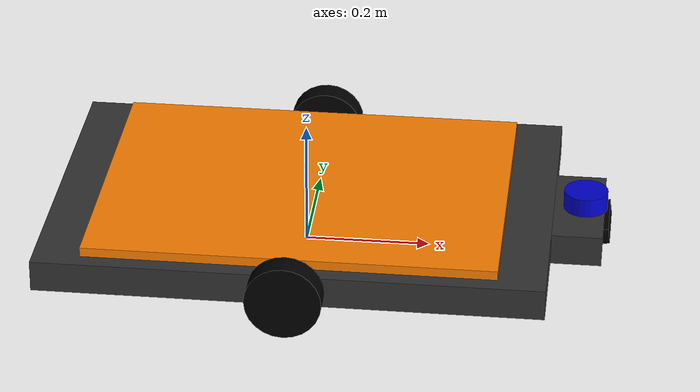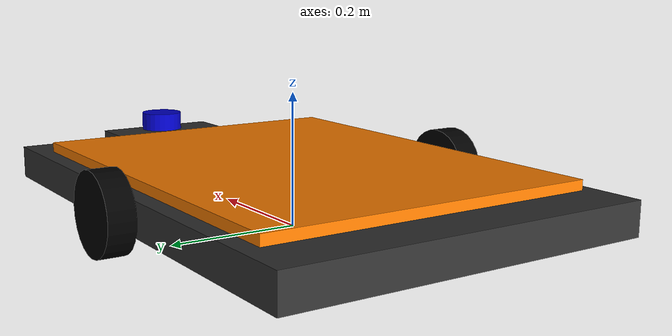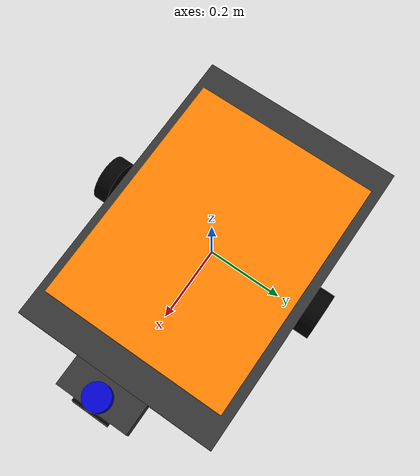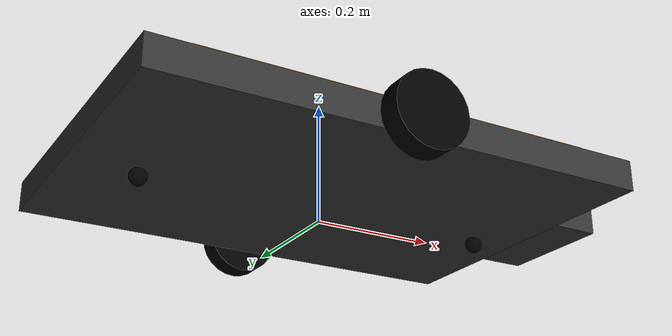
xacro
<?xml version="1.0"?>
<robot xmlns:xacro="http://www.ros.org/wiki/xacro" name="warehouse_amr">

    <xacro:property name="chassis_length" value="0.80"/>
    <xacro:property name="chassis_width" value="0.55"/>
    <xacro:property name="chassis_height" value="0.05"/>
    <xacro:property name="wheel_radius" value="0.06"/>
    <xacro:property name="wheel_width" value="0.04"/>
    <xacro:property name="wheel_ygap" value="0.02"/>

    <xacro:property name="caster_wheel_radius" value="0.015"/>
    <xacro:property name="caster_wheel_width" value="0.02"/>
    <xacro:property name="caster_trail" value="0.01"/>

    <xacro:property name="lift_length" value="0.65"/>
    <xacro:property name="lift_width" value="0.50"/>
    <xacro:property name="lift_height" value="0.015"/>
    <xacro:property name="pillar_radius" value="0.015"/>

    <material name="dark_grey"><color rgba="0.2 0.2 0.2 1.0"/></material>
    <material name="steel"><color rgba="0.7 0.7 0.7 1.0"/></material>
    <material name="safety_orange"><color rgba="1.0 0.5 0.0 1.0"/></material>
    <material name="black"><color rgba="0.0 0.0 0.0 1.0"/></material>
    <material name="blue"><color rgba="0.0 0.0 0.8 1.0"/></material>

    <xacro:macro name="inertial_box" params="mass l w h *origin">
        <inertial>
            <xacro:insert_block name="origin"/>
            <mass value="${mass}"/>
            <inertia ixx="${(1/12) * mass * (w*w + h*h)}" ixy="0.0" ixz="0.0"
                     iyy="${(1/12) * mass * (l*l + h*h)}" iyz="0.0"
                     izz="${(1/12) * mass * (l*l + w*w)}"/>
        </inertial>
    </xacro:macro>

    <xacro:macro name="inertial_cylinder" params="mass r h *origin">
        <inertial>
            <xacro:insert_block name="origin"/>
            <mass value="${mass}"/>
            <inertia ixx="${(1/12) * mass * (3*r*r + h*h)}" ixy="0.0" ixz="0.0"
                     iyy="${(1/12) * mass * (3*r*r + h*h)}" iyz="0.0"
                     izz="${(1/2) * mass * (r*r)}"/>
        </inertial>
    </xacro:macro>

    <xacro:macro name="inertial_sphere" params="mass r *origin">
        <inertial>
            <xacro:insert_block name="origin"/>
            <mass value="${mass}"/>
            <inertia ixx="${(2/5) * mass * (r*r)}" ixy="0.0" ixz="0.0"
                     iyy="${(2/5) * mass * (r*r)}" iyz="0.0"
                     izz="${(2/5) * mass * (r*r)}"/>
        </inertial>
    </xacro:macro>

    <link name="base_footprint"/>

    <link name="base_link">
        <visual>
            <origin xyz="0 0 0" rpy="0 0 0"/>
            <geometry><box size="${chassis_length} ${chassis_width} ${chassis_height}"/></geometry>
            <material name="dark_grey"/>
        </visual>
        <collision>
            <origin xyz="0 0 0" rpy="0 0 0"/>
            <geometry><box size="${chassis_length} ${chassis_width} ${chassis_height}"/></geometry>
        </collision>
        <xacro:inertial_box mass="20.0" l="${chassis_length}" w="${chassis_width}" h="${chassis_height}">
            <origin xyz="0 0 0" rpy="0 0 0"/>
        </xacro:inertial_box>
    </link>

    <joint name="base_footprint_joint" type="fixed">
        <parent link="base_footprint"/>
        <child link="base_link"/>
        <origin xyz="0 0 ${wheel_radius}" rpy="0 0 0"/>
    </joint>

    <xacro:macro name="wheel" params="prefix y_reflect">
        <link name="${prefix}_wheel">
            <visual>
                <origin xyz="0 0 0" rpy="${pi/2} 0 0"/>
                <geometry><cylinder radius="${wheel_radius}" length="${wheel_width}"/></geometry>
                <material name="black"/>
            </visual>
            <collision>
                <origin xyz="0 0 0" rpy="${pi/2} 0 0"/>
                <geometry><cylinder radius="${wheel_radius}" length="${wheel_width}"/></geometry>
            </collision>
            <xacro:inertial_cylinder mass="1.5" r="${wheel_radius}" h="${wheel_width}">
                <origin xyz="0 0 0" rpy="${pi/2} 0 0"/>
            </xacro:inertial_cylinder>
        </link>

        <gazebo reference="${prefix}_wheel">
            <mu1>1.0</mu1>
            <mu2>1.0</mu2>
        </gazebo>

        <joint name="${prefix}_wheel_joint" type="continuous">
            <parent link="base_link"/>
            <child link="${prefix}_wheel"/>
            <origin xyz="0 ${y_reflect * (chassis_width/2 + wheel_ygap)} 0" rpy="0 0 0"/>
            <axis xyz="0 1 0"/>
            <!-- Must clear the worst-case arc demand on the outer wheel:
                 (lin_max + ang_max*wheel_sep/2)/wheel_radius
                 = (1.0 + 2.0*0.295)/0.06 ~= 27 rad/s. -->
            <limit effort="200.0" velocity="30.0"/>
            <!-- No passive damping/friction: ign_ros2_control's velocity servo
                 drives these joints, so passive joint friction causes stick-slip. -->
            <dynamics damping="0.0" friction="0.0"/>
        </joint>
    </xacro:macro>

    <xacro:wheel prefix="left" y_reflect="1"/>
    <xacro:wheel prefix="right" y_reflect="-1"/>

    <xacro:macro name="caster" params="prefix x_offset">
        <!-- Low-friction support sphere (standard sim caster for diff-drive).
             No rolling/swivel constraint, so it can't scrub or fight turns;
             the drive wheels provide all traction. -->
        <link name="${prefix}_caster">
            <visual>
                <origin xyz="0 0 0" rpy="0 0 0"/>
                <geometry><sphere radius="${caster_wheel_radius}"/></geometry>
                <material name="black"/>
            </visual>
            <collision>
                <origin xyz="0 0 0" rpy="0 0 0"/>
                <geometry><sphere radius="${caster_wheel_radius}"/></geometry>
            </collision>
            <xacro:inertial_sphere mass="0.3" r="${caster_wheel_radius}">
                <origin xyz="0 0 0" rpy="0 0 0"/>
            </xacro:inertial_sphere>
        </link>

        <gazebo reference="${prefix}_caster">
            <mu1>0.02</mu1>
            <mu2>0.02</mu2>
        </gazebo>

        <joint name="${prefix}_caster_joint" type="fixed">
            <parent link="base_link"/>
            <child link="${prefix}_caster"/>
            <origin xyz="${x_offset} 0 ${-(wheel_radius - caster_wheel_radius)}" rpy="0 0 0"/>
        </joint>
    </xacro:macro>

    <xacro:caster prefix="front" x_offset="0.30"/>
    <xacro:caster prefix="rear" x_offset="-0.30"/>

    <link name="lift_plate">
        <visual>
            <origin xyz="0 0 ${lift_height/2}" rpy="0 0 0"/>
            <geometry><box size="${lift_length} ${lift_width} ${lift_height}"/></geometry>
            <material name="safety_orange"/>
        </visual>
        <collision>
            <origin xyz="0 0 ${lift_height/2}" rpy="0 0 0"/>
            <geometry><box size="${lift_length} ${lift_width} ${lift_height}"/></geometry>
        </collision>
        <xacro:inertial_box mass="4.0" l="${lift_length}" w="${lift_width}" h="${lift_height}">
            <origin xyz="0 0 ${lift_height/2}" rpy="0 0 0"/>
        </xacro:inertial_box>
    </link>

    <joint name="lift_joint" type="prismatic">
        <parent link="base_link"/>
        <child link="lift_plate"/>
        <origin xyz="0 0 ${chassis_height/2 + 0.001}" rpy="0 0 0"/>
        <axis xyz="0 0 1"/>
        <limit lower="0.0" upper="0.04" effort="4000.0" velocity="0.04"/>
        <dynamics damping="80.0" friction="0.0"/>
    </joint>

    <xacro:macro name="lift_pillar" params="prefix x_offset y_offset">
        <link name="${prefix}_pillar">
            <visual>
                <origin xyz="0 0 -0.0225" rpy="0 0 0"/>
                <geometry><cylinder radius="${pillar_radius}" length="0.045"/></geometry>
                <material name="steel"/>
            </visual>
            <xacro:inertial_cylinder mass="0.2" r="${pillar_radius}" h="0.045">
                <origin xyz="0 0 -0.0225" rpy="0 0 0"/>
            </xacro:inertial_cylinder>
        </link>

        <joint name="${prefix}_pillar_joint" type="fixed">
            <parent link="lift_plate"/>
            <child link="${prefix}_pillar"/>
            <origin xyz="${x_offset} ${y_offset} 0" rpy="0 0 0"/>
        </joint>
    </xacro:macro>

    <xacro:lift_pillar prefix="front_left"  x_offset="0.22"  y_offset="0.18"/>
    <xacro:lift_pillar prefix="front_right" x_offset="0.22"  y_offset="-0.18"/>
    <xacro:lift_pillar prefix="rear_left"   x_offset="-0.22" y_offset="0.18"/>
    <xacro:lift_pillar prefix="rear_right"  x_offset="-0.22" y_offset="-0.18"/>

    <link name="sensor_chin">
        <visual>
            <origin xyz="0 0 0" rpy="0 0 0"/>
            <geometry><box size="0.08 0.20 ${chassis_height}"/></geometry>
            <material name="dark_grey"/>
        </visual>
        <collision>
            <geometry><box size="0.08 0.20 ${chassis_height}"/></geometry>
        </collision>
        <xacro:inertial_box mass="2.0" l="0.08" w="0.20" h="${chassis_height}">
            <origin xyz="0 0 0" rpy="0 0 0"/>
        </xacro:inertial_box>
    </link>

    <joint name="sensor_chin_joint" type="fixed">
        <parent link="base_link"/>
        <child link="sensor_chin"/>
        <origin xyz="${chassis_length/2 + 0.04} 0 0" rpy="0 0 0"/>
    </joint>

    <link name="lidar_link">
        <visual>
            <geometry><cylinder radius="0.035" length="0.03"/></geometry>
            <material name="blue"/>
        </visual>
        <xacro:inertial_cylinder mass="0.2" r="0.035" h="0.03">
            <origin xyz="0 0 0" rpy="0 0 0"/>
        </xacro:inertial_cylinder>
    </link>

    <joint name="lidar_joint" type="fixed">
        <parent link="sensor_chin"/>
        <child link="lidar_link"/>
        <origin xyz="0.01 0 ${chassis_height/2 + 0.015}" rpy="0 0 0"/>
    </joint>

    <!-- 2-D lidar: 360° sweep, 10 Hz, 30 m range, published on /scan -->
    <gazebo reference="lidar_link">
        <sensor name="lidar" type="gpu_lidar">
            <pose>0 0 0 0 0 0</pose>
            <topic>lidar</topic>
            <update_rate>10</update_rate>
            <ray>
                <scan>
                    <horizontal>
                        <samples>360</samples>
                        <resolution>1</resolution>
                        <min_angle>-3.14159</min_angle>
                        <max_angle>3.14159</max_angle>
                    </horizontal>
                </scan>
                <range>
                    <min>0.12</min>
                    <max>30.0</max>
                    <resolution>0.01</resolution>
                </range>
                <noise>
                    <type>gaussian</type>
                    <mean>0.0</mean>
                    <stddev>0.01</stddev>
                </noise>
            </ray>
            <always_on>1</always_on>
            <visualize>true</visualize>
        </sensor>
    </gazebo>

    <link name="camera_link">
        <visual>
            <geometry><box size="0.02 0.10 0.025"/></geometry>
            <material name="black"/>
        </visual>
        <xacro:inertial_box mass="0.1" l="0.02" w="0.10" h="0.025">
            <origin xyz="0 0 0" rpy="0 0 0"/>
        </xacro:inertial_box>
    </link>

    <joint name="camera_joint" type="fixed">
        <parent link="sensor_chin"/>
        <child link="camera_link"/>
        <origin xyz="0.04 0 0" rpy="0 -0.12 0"/>
    </joint>

    <link name="imu_link">
        <!-- negligible mass, just a frame -->
        <xacro:inertial_box mass="0.01" l="0.01" w="0.01" h="0.01">
            <origin xyz="0 0 0" rpy="0 0 0"/>
        </xacro:inertial_box>
    </link>

    <joint name="imu_joint" type="fixed">
        <parent link="base_link"/>
        <child link="imu_link"/>
        <origin xyz="0 0 0" rpy="0 0 0"/>
    </joint>

    <!-- Forward-facing RGB camera: 640×480, 30 Hz, published on /camera/image_raw -->
    <gazebo reference="camera_link">
        <sensor name="camera" type="camera">
            <pose>0 0 0 0 0 0</pose>
            <topic>camera</topic>
            <update_rate>30</update_rate>
            <camera>
                <horizontal_fov>1.3962634</horizontal_fov>
                <image>
                    <width>640</width>
                    <height>480</height>
                    <format>R8G8B8</format>
                </image>
                <clip>
                    <near>0.05</near>
                    <far>50.0</far>
                </clip>
                <noise>
                    <type>gaussian</type>
                    <mean>0.0</mean>
                    <stddev>0.007</stddev>
                </noise>
            </camera>
            <always_on>1</always_on>
            <visualize>true</visualize>
        </sensor>
    </gazebo>

    <gazebo reference="imu_link">
        <sensor name="imu" type="imu">
            <topic>/imu</topic>
            <update_rate>100</update_rate>
            <always_on>1</always_on>
            <imu>
            <angular_velocity>
                <x><noise type="gaussian"><mean>0</mean><stddev>0.009</stddev></noise></x>
                <y><noise type="gaussian"><mean>0</mean><stddev>0.009</stddev></noise></y>
                <z><noise type="gaussian"><mean>0</mean><stddev>0.009</stddev></noise></z>
            </angular_velocity>
            <linear_acceleration>
                <x><noise type="gaussian"><mean>0</mean><stddev>0.021</stddev></noise></x>
                <y><noise type="gaussian"><mean>0</mean><stddev>0.021</stddev></noise></y>
                <z><noise type="gaussian"><mean>0</mean><stddev>0.021</stddev></noise></z>
            </linear_acceleration>
            </imu>
        </sensor>
    </gazebo>

    <ros2_control name="GazeboSystem" type="system">
        <hardware>
            <plugin>ign_ros2_control/IgnitionSystem</plugin>
        </hardware>

        <joint name="lift_joint">
            <command_interface name="effort">
                <param name="min">-500.0</param>
                <param name="max">500.0</param>
            </command_interface>
            <state_interface name="position"/>
            <state_interface name="velocity"/>
        </joint>

        <joint name="left_wheel_joint">
            <command_interface name="velocity">
                <param name="min">-30</param>
                <param name="max">30</param>
            </command_interface>
            <state_interface name="position"/>
            <state_interface name="velocity"/>
        </joint>

        <joint name="right_wheel_joint">
            <command_interface name="velocity">
                <param name="min">-30</param>
                <param name="max">30</param>
            </command_interface>
            <state_interface name="position"/>
            <state_interface name="velocity"/>
        </joint>
    </ros2_control>

    <gazebo>
        <plugin filename="ign_ros2_control-system" name="ign_ros2_control::IgnitionROS2ControlPlugin">
            <parameters>$(find amr_bringup)/config/amr_controllers.yaml</parameters>
        </plugin>
    </gazebo>
</robot>
